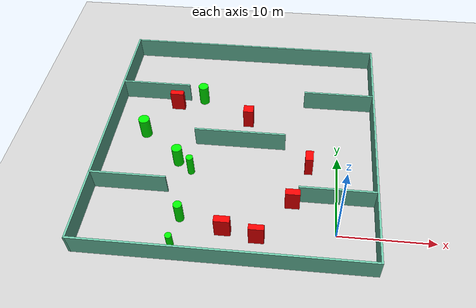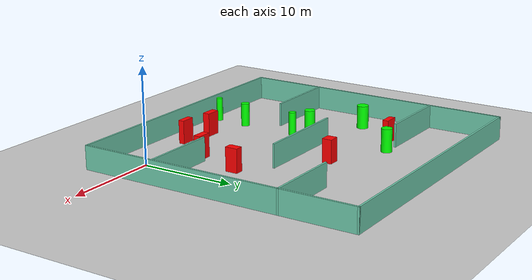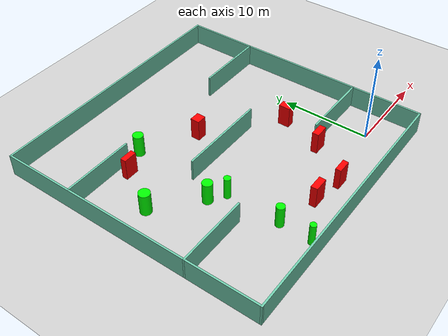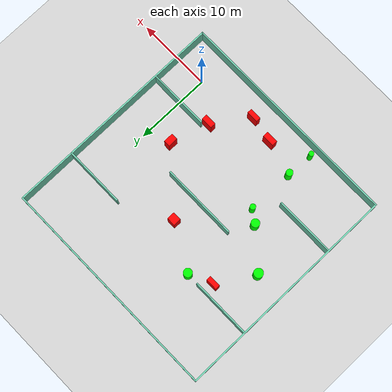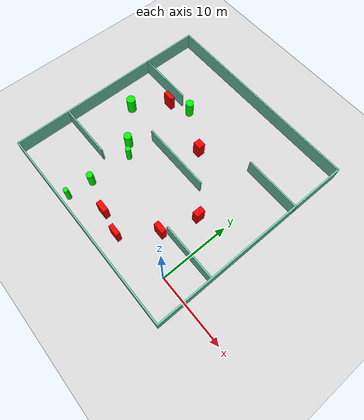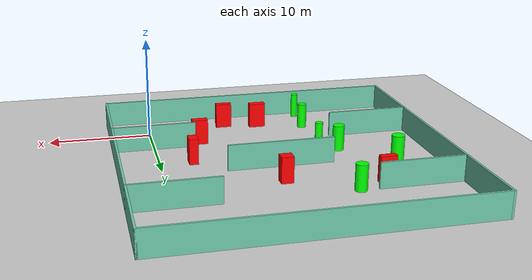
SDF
<sdf version="1.7">
 <world name="default">
  <light name="sun" type="directional">
   <pose>0 0 10 0 -0 0</pose>
   <diffuse>0.8 0.8 0.8 1</diffuse>
   <specular>0.2 0.2 0.2 1</specular>
   <attenuation>
    <range>1000</range>
    <constant>0.9</constant>
    <linear>0.01</linear>
    <quadratic>0.001</quadratic>
   </attenuation>
   <direction>-0.5 0.1 -0.9</direction>
   <spot><inner_angle>0</inner_angle><outer_angle>0</outer_angle><falloff>0</falloff></spot>
  </light>
  <model name="ground_plane">
   <static>1</static>
   <link name="link">
    <collision name="collision">
     <geometry><plane><normal>0 0 1</normal><size>100 100</size></plane></geometry>
     <surface>
      <contact><collide_bitmask>65535</collide_bitmask></contact>
      <friction><ode><mu>100</mu><mu2>50</mu2></ode></friction>
     </surface>
    </collision>
    <visual name="visual">
     <cast_shadows>0</cast_shadows>
     <geometry><plane><normal>0 0 1</normal><size>100 100</size></plane></geometry>
     <material>
      <script><uri>file://media/materials/scripts/gazebo.material</uri><name>Gazebo/Grey</name></script>
     </material>
    </visual>
   </link>
  </model>
  <gravity>0 0 -9.8</gravity>
  <magnetic_field>6e-06 2.3e-05 -4.2e-05</magnetic_field>
  <atmosphere type="adiabatic"/>
  <physics type="ode">
   <max_step_size>0.001</max_step_size>
   <real_time_factor>1</real_time_factor>
   <real_time_update_rate>1000</real_time_update_rate>
  </physics>
  <scene><ambient>0.4 0.4 0.4 1</ambient><background>0.7 0.7 0.7 1</background><shadows>1</shadows></scene>
  <spherical_coordinates>
   <surface_model>EARTH_WGS84</surface_model>
   <latitude_deg>0</latitude_deg>
   <longitude_deg>0</longitude_deg>
   <elevation>0</elevation>
   <heading_deg>0</heading_deg>
  </spherical_coordinates>
  <model name="my_base_walls">
   <link name="Wall_10">
    <collision name="Wall_10_Collision">
     <geometry><box><size>8.2 0.2 2.5</size></box></geometry>
     <pose>0 0 1.25 0 -0 0</pose>
    </collision>
    <visual name="Wall_10_Visual">
     <pose>0 0 1.25 0 -0 0</pose>
     <geometry><box><size>8.2 0.2 2.5</size></box></geometry>
     <material>
      <script><uri>file://media/materials/scripts/gazebo.material</uri><name>Gazebo/Grey</name></script>
      <ambient>0.435294 0.796078 0.67451 1</ambient>
     </material>
     <meta><layer>0</layer></meta>
    </visual>
    <pose>-11 -7 0 0 -0 0</pose>
   </link>
   <link name="Wall_12">
    <collision name="Wall_12_Collision">
     <geometry><box><size>8.2 0.2 2.5</size></box></geometry>
     <pose>0 0 1.25 0 -0 0</pose>
    </collision>
    <visual name="Wall_12_Visual">
     <pose>0 0 1.25 0 -0 0</pose>
     <geometry><box><size>8.2 0.2 2.5</size></box></geometry>
     <material>
      <script><uri>file://media/materials/scripts/gazebo.material</uri><name>Gazebo/Grey</name></script>
      <ambient>0.435294 0.796078 0.67451 1</ambient>
     </material>
     <meta><layer>0</layer></meta>
    </visual>
    <pose>-11 7 0 0 -0 0</pose>
   </link>
   <link name="Wall_14">
    <collision name="Wall_14_Collision">
     <geometry><box><size>8.2 0.2 2.5</size></box></geometry>
     <pose>0 0 1.25 0 -0 0</pose>
    </collision>
    <visual name="Wall_14_Visual">
     <pose>0 0 1.25 0 -0 0</pose>
     <geometry><box><size>8.2 0.2 2.5</size></box></geometry>
     <material>
      <script><uri>file://media/materials/scripts/gazebo.material</uri><name>Gazebo/Grey</name></script>
      <ambient>0.435294 0.796078 0.67451 1</ambient>
     </material>
     <meta><layer>0</layer></meta>
    </visual>
    <pose>11 7 0 0 -0 3.14159</pose>
   </link>
   <link name="Wall_16">
    <collision name="Wall_16_Collision">
     <geometry><box><size>10.2 0.2 2.5</size></box></geometry>
     <pose>0 0 1.25 0 -0 0</pose>
    </collision>
    <visual name="Wall_16_Visual">
     <pose>0 0 1.25 0 -0 0</pose>
     <geometry><box><size>10.2 0.2 2.5</size></box></geometry>
     <material>
      <script><uri>file://media/materials/scripts/gazebo.material</uri><name>Gazebo/Grey</name></script>
      <ambient>0.435294 0.796078 0.67451 1</ambient>
     </material>
     <meta><layer>0</layer></meta>
    </visual>
    <pose>0 0 0 0 -0 3.14159</pose>
   </link>
   <link name="Wall_2">
    <collision name="Wall_2_Collision">
     <geometry><box><size>30.2 0.2 2.5</size></box></geometry>
     <pose>0 0 1.25 0 -0 0</pose>
    </collision>
    <visual name="Wall_2_Visual">
     <pose>0 0 1.25 0 -0 0</pose>
     <geometry><box><size>30.2 0.2 2.5</size></box></geometry>
     <material>
      <script><uri>file://media/materials/scripts/gazebo.material</uri><name>Gazebo/Grey</name></script>
      <ambient>0.435294 0.796078 0.67451 1</ambient>
     </material>
     <meta><layer>0</layer></meta>
    </visual>
    <pose>0 -15 0 0 -0 3.14159</pose>
   </link>
   <link name="Wall_3">
    <collision name="Wall_3_Collision">
     <geometry><box><size>30.2 0.2 2.5</size></box></geometry>
     <pose>0 0 1.25 0 -0 0</pose>
    </collision>
    <visual name="Wall_3_Visual">
     <pose>0 0 1.25 0 -0 0</pose>
     <geometry><box><size>30.2 0.2 2.5</size></box></geometry>
     <material>
      <script><uri>file://media/materials/scripts/gazebo.material</uri><name>Gazebo/Grey</name></script>
      <ambient>0.435294 0.796078 0.67451 1</ambient>
     </material>
     <meta><layer>0</layer></meta>
    </visual>
    <pose>-15 0 0 0 -0 1.5708</pose>
   </link>
   <link name="Wall_4">
    <collision name="Wall_4_Collision">
     <geometry><box><size>30.2 0.2 2.5</size></box></geometry>
     <pose>0 0 1.25 0 -0 0</pose>
    </collision>
    <visual name="Wall_4_Visual">
     <pose>0 0 1.25 0 -0 0</pose>
     <geometry><box><size>30.2 0.2 2.5</size></box></geometry>
     <material>
      <script><uri>file://media/materials/scripts/gazebo.material</uri><name>Gazebo/Grey</name></script>
      <ambient>0.435294 0.796078 0.67451 1</ambient>
     </material>
     <meta><layer>0</layer></meta>
    </visual>
    <pose>0 15 0 0 -0 0</pose>
   </link>
   <link name="Wall_6">
    <collision name="Wall_6_Collision">
     <geometry><box><size>30.2 0.2 2.5</size></box></geometry>
     <pose>0 0 1.25 0 -0 0</pose>
    </collision>
    <visual name="Wall_6_Visual">
     <pose>0 0 1.25 0 -0 0</pose>
     <geometry><box><size>30.2 0.2 2.5</size></box></geometry>
     <material>
      <script><uri>file://media/materials/scripts/gazebo.material</uri><name>Gazebo/Grey</name></script>
      <ambient>0.435294 0.796078 0.67451 1</ambient>
     </material>
     <meta><layer>0</layer></meta>
    </visual>
    <pose>15 0 0 0 -0 1.5708</pose>
   </link>
   <link name="Wall_8">
    <collision name="Wall_8_Collision">
     <geometry><box><size>8.2 0.2 2.5</size></box></geometry>
     <pose>0 0 1.25 0 -0 0</pose>
    </collision>
    <visual name="Wall_8_Visual">
     <pose>0 0 1.25 0 -0 0</pose>
     <geometry><box><size>8.2 0.2 2.5</size></box></geometry>
     <material>
      <script><uri>file://media/materials/scripts/gazebo.material</uri><name>Gazebo/Grey</name></script>
      <ambient>0.435294 0.796078 0.67451 1</ambient>
     </material>
     <meta><layer>0</layer></meta>
    </visual>
    <pose>11 -7 0 0 -0 3.14159</pose>
   </link>
   <static>1</static>
   <pose>-11 11 0 0 -0 0</pose>
  </model>
  <model name="cylinder1">
   <static>1</static>
   <link name="link">
    <inertial>
     <mass>1</mass>
     <inertia><ixx>0.5</ixx><ixy>0</ixy><ixz>0</ixz><iyy>0.5</iyy><iyz>0</iyz><izz>1</izz></inertia>
    </inertial>
    <collision name="collision">
     <geometry><cylinder><radius>0.4560234794362063</radius><length>2.5</length></cylinder></geometry>
    </collision>
    <visual name="visual">
     <geometry><cylinder><radius>0.4560234794362063</radius><length>2.5</length></cylinder></geometry>
     <material>
      <ambient>0 1 0 1</ambient>
      <diffuse>0 1 0 1</diffuse>
      <specular>0.1 0.1 0.1 1</specular>
      <emissive>0 0 0 0</emissive>
     </material>
    </visual>
   </link>
   <pose>-16.0040211814426 0.6830629107922763 1.25 0 0 0</pose>
  </model>
  <model name="cylinder2">
   <static>1</static>
   <link name="link">
    <inertial>
     <mass>1</mass>
     <inertia><ixx>0.5</ixx><ixy>0</ixy><ixz>0</ixz><iyy>0.5</iyy><iyz>0</iyz><izz>1</izz></inertia>
    </inertial>
    <collision name="collision">
     <geometry><cylinder><radius>0.5603623766893435</radius><length>2.5</length></cylinder></geometry>
    </collision>
    <visual name="visual">
     <geometry><cylinder><radius>0.5603623766893435</radius><length>2.5</length></cylinder></geometry>
     <material>
      <ambient>0 1 0 1</ambient>
      <diffuse>0 1 0 1</diffuse>
      <specular>0.1 0.1 0.1 1</specular>
      <emissive>0 0 0 0</emissive>
     </material>
    </visual>
   </link>
   <pose>-17.55341144326819 7.971215408952926 1.25 0 0 0</pose>
  </model>
  <model name="cylinder3">
   <static>1</static>
   <link name="link">
    <inertial>
     <mass>1</mass>
     <inertia><ixx>0.5</ixx><ixy>0</ixy><ixz>0</ixz><iyy>0.5</iyy><iyz>0</iyz><izz>1</izz></inertia>
    </inertial>
    <collision name="collision">
     <geometry><cylinder><radius>0.3778746493224314</radius><length>2.5</length></cylinder></geometry>
    </collision>
    <visual name="visual">
     <geometry><cylinder><radius>0.3778746493224314</radius><length>2.5</length></cylinder></geometry>
     <material>
      <ambient>0 1 0 1</ambient>
      <diffuse>0 1 0 1</diffuse>
      <specular>0.1 0.1 0.1 1</specular>
      <emissive>0 0 0 0</emissive>
     </material>
    </visual>
   </link>
   <pose>-15.926050830745373 6.800359353860859 1.25 0 0 0</pose>
  </model>
  <model name="cylinder4">
   <static>1</static>
   <link name="link">
    <inertial>
     <mass>1</mass>
     <inertia><ixx>0.5</ixx><ixy>0</ixy><ixz>0</ixz><iyy>0.5</iyy><iyz>0</iyz><izz>1</izz></inertia>
    </inertial>
    <collision name="collision">
     <geometry><cylinder><radius>0.5730273143269387</radius><length>2.5</length></cylinder></geometry>
    </collision>
    <visual name="visual">
     <geometry><cylinder><radius>0.5730273143269387</radius><length>2.5</length></cylinder></geometry>
     <material>
      <ambient>0 1 0 1</ambient>
      <diffuse>0 1 0 1</diffuse>
      <specular>0.1 0.1 0.1 1</specular>
      <emissive>0 0 0 0</emissive>
     </material>
    </visual>
   </link>
   <pose>-16.254613330488883 17.915433539970827 1.25 0 0 0</pose>
  </model>
  <model name="cylinder5">
   <static>1</static>
   <link name="link">
    <inertial>
     <mass>1</mass>
     <inertia><ixx>0.5</ixx><ixy>0</ixy><ixz>0</ixz><iyy>0.5</iyy><iyz>0</iyz><izz>1</izz></inertia>
    </inertial>
    <collision name="collision">
     <geometry><cylinder><radius>0.6216660681217056</radius><length>2.5</length></cylinder></geometry>
    </collision>
    <visual name="visual">
     <geometry><cylinder><radius>0.6216660681217056</radius><length>2.5</length></cylinder></geometry>
     <material>
      <ambient>0 1 0 1</ambient>
      <diffuse>0 1 0 1</diffuse>
      <specular>0.1 0.1 0.1 1</specular>
      <emissive>0 0 0 0</emissive>
     </material>
    </visual>
   </link>
   <pose>-22.097891148011225 11.911777641995418 1.25 0 0 0</pose>
  </model>
  <model name="cylinder6">
   <static>1</static>
   <link name="link">
    <inertial>
     <mass>1</mass>
     <inertia><ixx>0.5</ixx><ixy>0</ixy><ixz>0</ixz><iyy>0.5</iyy><iyz>0</iyz><izz>1</izz></inertia>
    </inertial>
    <collision name="collision">
     <geometry><cylinder><radius>0.3362242728152965</radius><length>2.5</length></cylinder></geometry>
    </collision>
    <visual name="visual">
     <geometry><cylinder><radius>0.3362242728152965</radius><length>2.5</length></cylinder></geometry>
     <material>
      <ambient>0 1 0 1</ambient>
      <diffuse>0 1 0 1</diffuse>
      <specular>0.1 0.1 0.1 1</specular>
      <emissive>0 0 0 0</emissive>
     </material>
    </visual>
   </link>
   <pose>-16.170354908620553 -2.8839190163734 1.25 0 0 0</pose>
  </model>
  <model name="box1">
   <static>1</static>
   <link name="link">
    <inertial>
     <mass>1</mass>
     <inertia><ixx>0.083</ixx><ixy>0</ixy><ixz>0</ixz><iyy>0.083</iyy><iyz>0</iyz><izz>0.083</izz></inertia>
    </inertial>
    <collision name="collision">
     <geometry><box><size>1.5605307531158032 0.6207960474151277 2.5</size></box></geometry>
    </collision>
    <visual name="visual">
     <geometry><box><size>1.5605307531158032 0.6207960474151277 2.5</size></box></geometry>
     <material>
      <ambient>1 0 0 1</ambient>
      <diffuse>1 0 0 1</diffuse>
      <specular>0.1 0.1 0.1 1</specular>
      <emissive>0 0 0 0</emissive>
     </material>
    </visual>
    <sensor name="my_contact" type="contact">
     <contact><collision>box_collision</collision><topic>__default_topic__</topic></contact>
    </sensor>
   </link>
   <pose>-7.9310046417244 -1.22136760898865 1.25 0 0 0</pose>
  </model>
  <model name="box2">
   <static>1</static>
   <link name="link">
    <inertial>
     <mass>1</mass>
     <inertia><ixx>0.083</ixx><ixy>0</ixy><ixz>0</ixz><iyy>0.083</iyy><iyz>0</iyz><izz>0.083</izz></inertia>
    </inertial>
    <collision name="collision">
     <geometry><box><size>1.5547583557922864 0.7298126263727389 2.5</size></box></geometry>
    </collision>
    <visual name="visual">
     <geometry><box><size>1.5547583557922864 0.7298126263727389 2.5</size></box></geometry>
     <material>
      <ambient>1 0 0 1</ambient>
      <diffuse>1 0 0 1</diffuse>
      <specular>0.1 0.1 0.1 1</specular>
      <emissive>0 0 0 0</emissive>
     </material>
    </visual>
    <sensor name="my_contact" type="contact">
     <contact><collision>box_collision</collision><topic>__default_topic__</topic></contact>
    </sensor>
   </link>
   <pose>-4.639702453822732 3.282825960607333 1.25 0 0 0</pose>
  </model>
  <model name="box3">
   <static>1</static>
   <link name="link">
    <inertial>
     <mass>1</mass>
     <inertia><ixx>0.083</ixx><ixy>0</ixy><ixz>0</ixz><iyy>0.083</iyy><iyz>0</iyz><izz>0.083</izz></inertia>
    </inertial>
    <collision name="collision">
     <geometry><box><size>1.1461680310218558 1.037974350183388 2.5</size></box></geometry>
    </collision>
    <visual name="visual">
     <geometry><box><size>1.1461680310218558 1.037974350183388 2.5</size></box></geometry>
     <material>
      <ambient>1 0 0 1</ambient>
      <diffuse>1 0 0 1</diffuse>
      <specular>0.1 0.1 0.1 1</specular>
      <emissive>0 0 0 0</emissive>
     </material>
    </visual>
    <sensor name="my_contact" type="contact">
     <contact><collision>box_collision</collision><topic>__default_topic__</topic></contact>
    </sensor>
   </link>
   <pose>-10.434652346103505 14.64479903258519 1.25 0 0 0</pose>
  </model>
  <model name="box4">
   <static>1</static>
   <link name="link">
    <inertial>
     <mass>1</mass>
     <inertia><ixx>0.083</ixx><ixy>0</ixy><ixz>0</ixz><iyy>0.083</iyy><iyz>0</iyz><izz>0.083</izz></inertia>
    </inertial>
    <collision name="collision">
     <geometry><box><size>0.860986002553058 1.3162699549332144 2.5</size></box></geometry>
    </collision>
    <visual name="visual">
     <geometry><box><size>0.860986002553058 1.3162699549332144 2.5</size></box></geometry>
     <material>
      <ambient>1 0 0 1</ambient>
      <diffuse>1 0 0 1</diffuse>
      <specular>0.1 0.1 0.1 1</specular>
      <emissive>0 0 0 0</emissive>
     </material>
    </visual>
    <sensor name="my_contact" type="contact">
     <contact><collision>box_collision</collision><topic>__default_topic__</topic></contact>
    </sensor>
   </link>
   <pose>-3.1326564071177003 8.246770685629397 1.25 0 0 0</pose>
  </model>
  <model name="box5">
   <static>1</static>
   <link name="link">
    <inertial>
     <mass>1</mass>
     <inertia><ixx>0.083</ixx><ixy>0</ixy><ixz>0</ixz><iyy>0.083</iyy><iyz>0</iyz><izz>0.083</izz></inertia>
    </inertial>
    <collision name="collision">
     <geometry><box><size>1.6197098430034889 0.7343567157594726 2.5</size></box></geometry>
    </collision>
    <visual name="visual">
     <geometry><box><size>1.6197098430034889 0.7343567157594726 2.5</size></box></geometry>
     <material>
      <ambient>1 0 0 1</ambient>
      <diffuse>1 0 0 1</diffuse>
      <specular>0.1 0.1 0.1 1</specular>
      <emissive>0 0 0 0</emissive>
     </material>
    </visual>
    <sensor name="my_contact" type="contact">
     <contact><collision>box_collision</collision><topic>__default_topic__</topic></contact>
    </sensor>
   </link>
   <pose>-11.388922005752843 -0.589499504104082 1.25 0 0 0</pose>
  </model>
  <model name="box6">
   <static>1</static>
   <link name="link">
    <inertial>
     <mass>1</mass>
     <inertia><ixx>0.083</ixx><ixy>0</ixy><ixz>0</ixz><iyy>0.083</iyy><iyz>0</iyz><izz>0.083</izz></inertia>
    </inertial>
    <collision name="collision">
     <geometry><box><size>1.5499514882321206 0.6371902362160221 2.5</size></box></geometry>
    </collision>
    <visual name="visual">
     <geometry><box><size>1.5499514882321206 0.6371902362160221 2.5</size></box></geometry>
     <material>
      <ambient>1 0 0 1</ambient>
      <diffuse>1 0 0 1</diffuse>
      <specular>0.1 0.1 0.1 1</specular>
      <emissive>0 0 0 0</emissive>
     </material>
    </visual>
    <sensor name="my_contact" type="contact">
     <contact><collision>box_collision</collision><topic>__default_topic__</topic></contact>
    </sensor>
   </link>
   <pose>-19.18899011705213 16.582340498500937 1.25 0 0 0</pose>
  </model>
 </world>
</sdf>
